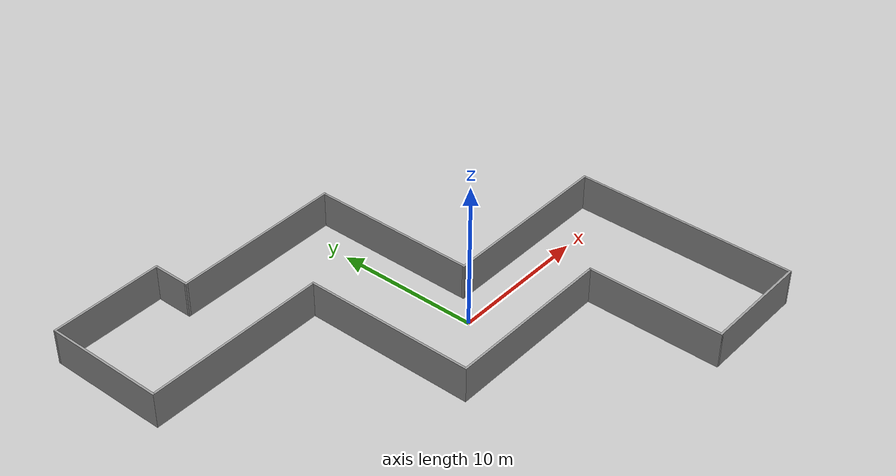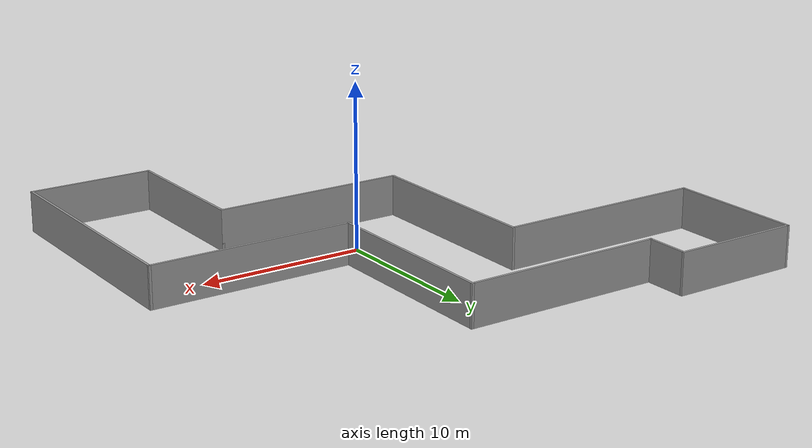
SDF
<?xml version='1.0'?>
<sdf version='1.6'>
  <model name='test_world'>
    <pose frame=''>-2.11954 1.19276 0 0 -0 0</pose>
    <link name='Wall_25'>
      <collision name='Wall_25_Collision'>
        <geometry>
          <box>
            <size>8.5 0.15 2.5</size>
          </box>
        </geometry>
        <pose frame=''>0 0 1.25 0 -0 0</pose>
      </collision>
      <visual name='Wall_25_Visual'>
        <pose frame=''>0 0 1.25 0 -0 0</pose>
        <geometry>
          <box>
            <size>8.5 0.15 2.5</size>
          </box>
        </geometry>
        <material>
          <script>
            <uri>file://media/materials/scripts/gazebo.material</uri>
            <name>Gazebo/Grey</name>
          </script>
          <ambient>1 1 1 1</ambient>
        </material>
        <meta>
          <layer>0</layer>
        </meta>
      </visual>
      <pose frame=''>-16.15 10.6 0 0 0 -1.5708</pose>
    </link>
    <link name='Wall_26'>
      <collision name='Wall_26_Collision'>
        <geometry>
          <box>
            <size>13 0.15 2.5</size>
          </box>
        </geometry>
        <pose frame=''>0 0 1.25 0 -0 0</pose>
      </collision>
      <visual name='Wall_26_Visual'>
        <pose frame=''>0 0 1.25 0 -0 0</pose>
        <geometry>
          <box>
            <size>13 0.15 2.5</size>
          </box>
        </geometry>
        <material>
          <script>
            <uri>file://media/materials/scripts/gazebo.material</uri>
            <name>Gazebo/Grey</name>
          </script>
          <ambient>1 1 1 1</ambient>
        </material>
        <meta>
          <layer>0</layer>
        </meta>
      </visual>
      <pose frame=''>-9.725 6.425 0 0 -0 0</pose>
    </link>
    <link name='Wall_27'>
      <collision name='Wall_27_Collision'>
        <geometry>
          <box>
            <size>12 0.15 2.5</size>
          </box>
        </geometry>
        <pose frame=''>0 0 1.25 0 -0 0</pose>
      </collision>
      <visual name='Wall_27_Visual'>
        <pose frame=''>0 0 1.25 0 -0 0</pose>
        <geometry>
          <box>
            <size>12 0.15 2.5</size>
          </box>
        </geometry>
        <material>
          <script>
            <uri>file://media/materials/scripts/gazebo.material</uri>
            <name>Gazebo/Grey</name>
          </script>
          <ambient>1 1 1 1</ambient>
        </material>
        <meta>
          <layer>0</layer>
        </meta>
      </visual>
      <pose frame=''>-3.3 0.5 0 0 0 -1.5708</pose>
    </link>
    <link name='Wall_28'>
      <collision name='Wall_28_Collision'>
        <geometry>
          <box>
            <size>12 0.15 2.5</size>
          </box>
        </geometry>
        <pose frame=''>0 0 1.25 0 -0 0</pose>
      </collision>
      <visual name='Wall_28_Visual'>
        <pose frame=''>0 0 1.25 0 -0 0</pose>
        <geometry>
          <box>
            <size>12 0.15 2.5</size>
          </box>
        </geometry>
        <material>
          <script>
            <uri>file://media/materials/scripts/gazebo.material</uri>
            <name>Gazebo/Grey</name>
          </script>
          <ambient>1 1 1 1</ambient>
        </material>
        <meta>
          <layer>0</layer>
        </meta>
      </visual>
      <pose frame=''>2.625 -5.425 0 0 -0 0</pose>
    </link>
    <link name='Wall_29'>
      <collision name='Wall_29_Collision'>
        <geometry>
          <box>
            <size>9.5 0.15 2.5</size>
          </box>
        </geometry>
        <pose frame=''>0 0 1.25 0 -0 0</pose>
      </collision>
      <visual name='Wall_29_Visual'>
        <pose frame=''>0 0 1.25 0 -0 0</pose>
        <geometry>
          <box>
            <size>9.5 0.15 2.5</size>
          </box>
        </geometry>
        <material>
          <script>
            <uri>file://media/materials/scripts/gazebo.material</uri>
            <name>Gazebo/Grey</name>
          </script>
          <ambient>1 1 1 1</ambient>
        </material>
        <meta>
          <layer>0</layer>
        </meta>
      </visual>
      <pose frame=''>8.55 -10.1 0 0 0 -1.5708</pose>
    </link>
    <link name='Wall_30'>
      <collision name='Wall_30_Collision'>
        <geometry>
          <box>
            <size>7.75 0.15 2.5</size>
          </box>
        </geometry>
        <pose frame=''>0 0 1.25 0 -0 0</pose>
      </collision>
      <visual name='Wall_30_Visual'>
        <pose frame=''>0 0 1.25 0 -0 0</pose>
        <geometry>
          <box>
            <size>7.75 0.15 2.5</size>
          </box>
        </geometry>
        <material>
          <script>
            <uri>file://media/materials/scripts/gazebo.material</uri>
            <name>Gazebo/Grey</name>
          </script>
          <ambient>1 1 1 1</ambient>
        </material>
        <meta>
          <layer>0</layer>
        </meta>
      </visual>
      <pose frame=''>12.35 -14.775 0 0 -0 0</pose>
    </link>
    <link name='Wall_31'>
      <collision name='Wall_31_Collision'>
        <geometry>
          <box>
            <size>15.5 0.15 2.5</size>
          </box>
        </geometry>
        <pose frame=''>0 0 1.25 0 -0 0</pose>
      </collision>
      <visual name='Wall_31_Visual'>
        <pose frame=''>0 0 1.25 0 -0 0</pose>
        <geometry>
          <box>
            <size>15.5 0.15 2.5</size>
          </box>
        </geometry>
        <material>
          <script>
            <uri>file://media/materials/scripts/gazebo.material</uri>
            <name>Gazebo/Grey</name>
          </script>
          <ambient>1 1 1 1</ambient>
        </material>
        <meta>
          <layer>0</layer>
        </meta>
      </visual>
      <pose frame=''>16.15 -7.1 0 0 -0 1.5708</pose>
    </link>
    <link name='Wall_32'>
      <collision name='Wall_32_Collision'>
        <geometry>
          <box>
            <size>12.5 0.15 2.5</size>
          </box>
        </geometry>
        <pose frame=''>0 0 1.25 0 -0 0</pose>
      </collision>
      <visual name='Wall_32_Visual'>
        <pose frame=''>0 0 1.25 0 -0 0</pose>
        <geometry>
          <box>
            <size>12.5 0.15 2.5</size>
          </box>
        </geometry>
        <material>
          <script>
            <uri>file://media/materials/scripts/gazebo.material</uri>
            <name>Gazebo/Grey</name>
          </script>
          <ambient>1 1 1 1</ambient>
        </material>
        <meta>
          <layer>0</layer>
        </meta>
      </visual>
      <pose frame=''>9.975 0.575 0 0 -0 3.14159</pose>
    </link>
    <link name='Wall_33'>
      <collision name='Wall_33_Collision'>
        <geometry>
          <box>
            <size>11.75 0.15 2.5</size>
          </box>
        </geometry>
        <pose frame=''>0 0 1.25 0 -0 0</pose>
      </collision>
      <visual name='Wall_33_Visual'>
        <pose frame=''>0 0 1.25 0 -0 0</pose>
        <geometry>
          <box>
            <size>11.75 0.15 2.5</size>
          </box>
        </geometry>
        <material>
          <script>
            <uri>file://media/materials/scripts/gazebo.material</uri>
            <name>Gazebo/Grey</name>
          </script>
          <ambient>1 1 1 1</ambient>
        </material>
        <meta>
          <layer>0</layer>
        </meta>
      </visual>
      <pose frame=''>3.8 6.375 0 0 -0 1.5708</pose>
    </link>
    <link name='Wall_34'>
      <collision name='Wall_34_Collision'>
        <geometry>
          <box>
            <size>12.25 0.15 2.5</size>
          </box>
        </geometry>
        <pose frame=''>0 0 1.25 0 -0 0</pose>
      </collision>
      <visual name='Wall_34_Visual'>
        <pose frame=''>0 0 1.25 0 -0 0</pose>
        <geometry>
          <box>
            <size>12.25 0.15 2.5</size>
          </box>
        </geometry>
        <material>
          <script>
            <uri>file://media/materials/scripts/gazebo.material</uri>
            <name>Gazebo/Grey</name>
          </script>
          <ambient>1 1 1 1</ambient>
        </material>
        <meta>
          <layer>0</layer>
        </meta>
      </visual>
      <pose frame=''>-2.25 12.175 0 0 -0 3.14159</pose>
    </link>
    <link name='Wall_35'>
      <collision name='Wall_35_Collision'>
        <geometry>
          <box>
            <size>2.75 0.15 2.5</size>
          </box>
        </geometry>
        <pose frame=''>0 0 1.25 0 -0 0</pose>
      </collision>
      <visual name='Wall_35_Visual'>
        <pose frame=''>0 0 1.25 0 -0 0</pose>
        <geometry>
          <box>
            <size>2.75 0.15 2.5</size>
          </box>
        </geometry>
        <material>
          <script>
            <uri>file://media/materials/scripts/gazebo.material</uri>
            <name>Gazebo/Grey</name>
          </script>
          <ambient>1 1 1 1</ambient>
        </material>
        <meta>
          <layer>0</layer>
        </meta>
      </visual>
      <pose frame=''>-8.3 13.475 0 0 -0 1.5708</pose>
    </link>
    <link name='Wall_36'>
      <collision name='Wall_36_Collision'>
        <geometry>
          <box>
            <size>8 0.15 2.5</size>
          </box>
        </geometry>
        <pose frame=''>0 0 1.25 0 -0 0</pose>
      </collision>
      <visual name='Wall_36_Visual'>
        <pose frame=''>0 0 1.25 0 -0 0</pose>
        <geometry>
          <box>
            <size>8 0.15 2.5</size>
          </box>
        </geometry>
        <material>
          <script>
            <uri>file://media/materials/scripts/gazebo.material</uri>
            <name>Gazebo/Grey</name>
          </script>
          <ambient>1 1 1 1</ambient>
        </material>
        <meta>
          <layer>0</layer>
        </meta>
      </visual>
      <pose frame=''>-12.225 14.775 0 0 0 -3.14159</pose>
    </link>
    <static>1</static>
  </model>
</sdf>
